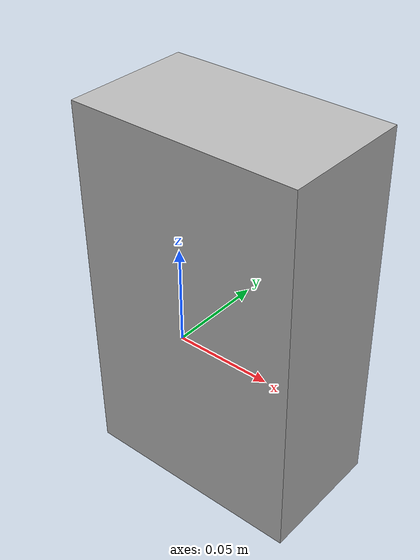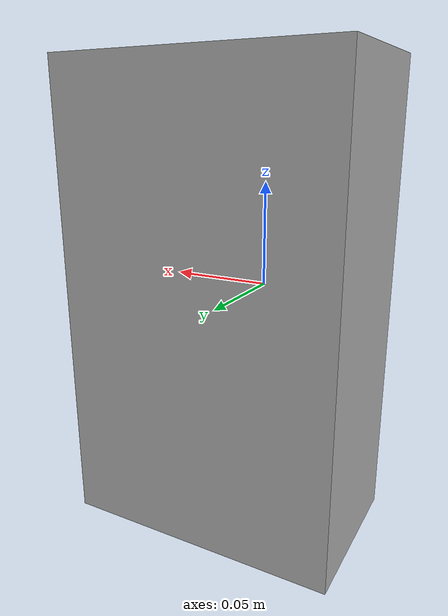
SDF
<?xml version="1.0" ?>
<sdf version="1.4">
  <model name="shelf1_box1_1a">
    <link name="body">
      <pose>0 0 0 0 0 0</pose>
      <inertial>
        <pose>  -0.000415   0.036177   0.000155 0 0 0</pose>
        <mass>0.5</mass>
        <inertia>
          <ixx>0.01</ixx>
          <ixy>0</ixy>
          <ixz>0</ixz>
          <iyy>0.01</iyy>
          <iyz>0</iyz>
          <izz>0.01</izz>
        </inertia>
      </inertial>
      <collision name="collision">
        <geometry>
          <mesh>
            <uri>model://bookshelf/shelf1_items/box1_1a/box1_1a.dae</uri>
          </mesh>
        </geometry>
      </collision>
      <visual name="visual">
        <geometry>
          <mesh>
            <uri>model://bookshelf/shelf1_items/box1_1a/box1_1a.dae</uri>
          </mesh>
        </geometry>
      </visual>
    </link>
  </model>
</sdf>
